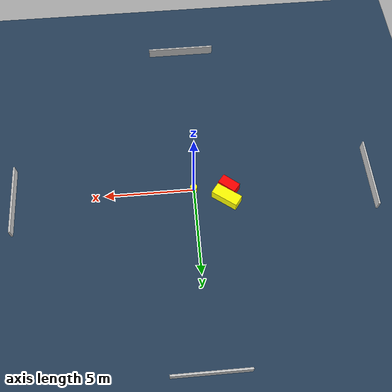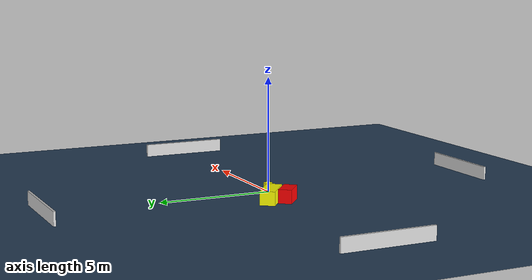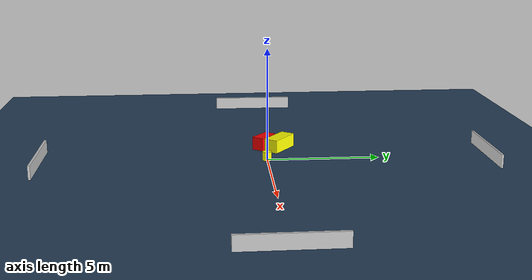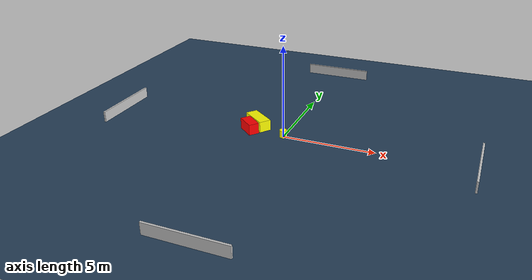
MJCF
<?xml version="1.0" ?>
<mujoco model="generated_environment">
  <option timestep="0.01" integrator="RK4" cone="elliptic"/>
  <default>
    <geom density="1"/>
  </default>
  <asset>
    <texture builtin="gradient" height="3072" name="skybox" rgb1="0.3 0.5 0.7" rgb2="0 0 0" type="skybox" width="512"/>
    <texture builtin="checker" height="300" name="groundplane" rgb1="0.2 0.3 0.4" rgb2="0.1 0.2 0.3" type="2d" width="300"/>
    <material name="groundplane" reflectance="0.2" texrepeat="5 5" texture="groundplane"/>
  </asset>
  <worldbody>
    <light dir="0 0 -1" directional="true" pos="0 0 1.5"/>
    <geom condim="3" friction="0.5 0.005 0.001" material="groundplane" name="floor" pos="0 0 0" size="0 0 0.05" type="plane"/>
    <body name="walls">
      <geom name="wall_1" condim="4" pos="-10.0 0.0 0.3" rgba="0.800000011920929 0.800000011920929 0.800000011920929 1.0" size="0.05 2.0 0.3" type="box"/>
      <geom name="wall_2" condim="4" pos="10.0 0.0 0.3" rgba="0.800000011920929 0.800000011920929 0.800000011920929 1.0" size="0.05 2.0 0.3" type="box"/>
      <geom name="wall_3" condim="4" pos="0.0 -10.0 0.3" rgba="0.800000011920929 0.800000011920929 0.800000011920929 1.0" size="2.0 0.05 0.3" type="box"/>
      <geom name="wall_4" condim="4" pos="0.0 10.0 0.3" rgba="0.800000011920929 0.800000011920929 0.800000011920929 1.0" size="2.0 0.05 0.3" type="box"/>
    </body>
    <body name="robot">
      <joint name="joint_x" type="slide" pos="0 0 0" axis="1 0 0"/>
      <joint name="joint_y" type="slide" pos="0 0 0" axis="0 1 0"/>
      <geom name="robot" type="cylinder" pos="0.0 0.0 0.2" size="0.2 0.2 0.0" mass="5.0" friction="1.0 0.005 0.0001" condim="4" rgba="1.0 1.0 0.0 1.0"/>
    </body>
    <body name="obstacle_1_movable">
      <geom name="obstacle_1_movable" condim="4" pos="-1.7703620898078611 0.7142803834207688 0.3" euler="0 0 233.2119321036866" friction="0.0 0.005 0.001" rgba="1.0 1.0 0.0 1.0" size="0.329528585393669 0.7715831987603359 0.3" type="box" mass="0.1"/>
      <joint type="free"/>
    </body>
    <body name="obstacle_2_static">
      <geom name="obstacle_2_static" condim="4" pos="-1.9687535518303598 0.0250727488300864 0.3" euler="0 0 230.37322859580988" friction="0.0 0.005 0.001" rgba="1.0 0.0 0.0 1.0" size="0.28402286548787825 0.5345544465614998 0.3" type="box"/>
    </body>
  </worldbody>
  <actuator>
    <motor name="actuator_x" joint="joint_x" gear="1" ctrlrange="-1 1"/>
    <motor name="actuator_y" joint="joint_y" gear="1" ctrlrange="-1 1"/>
  </actuator>
</mujoco>
